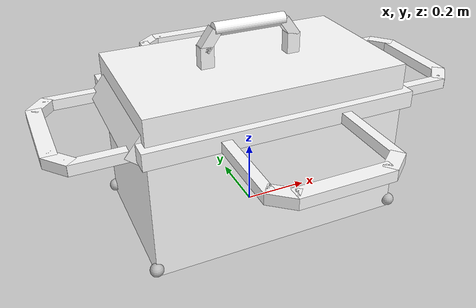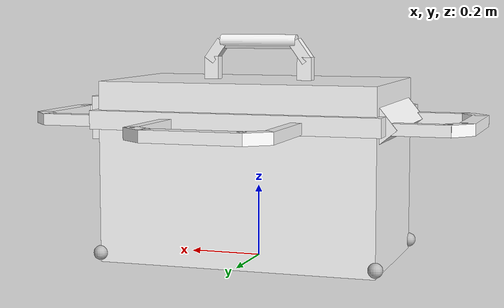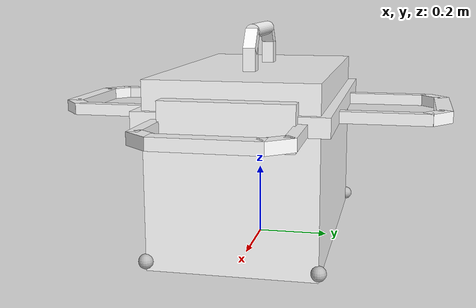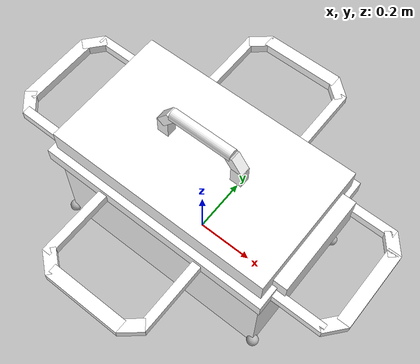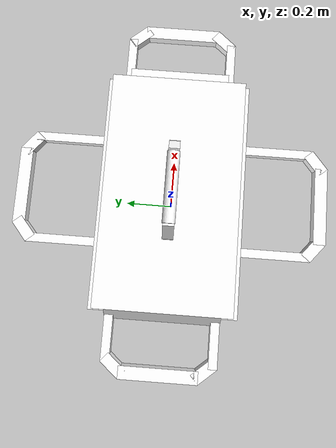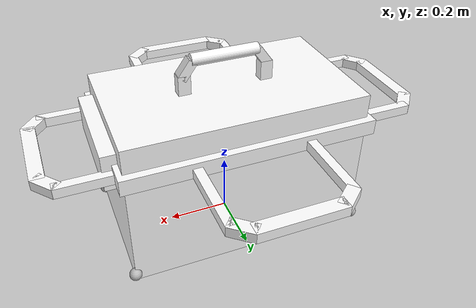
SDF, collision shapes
<?xml version='1.0' ?>
<sdf version="1.6">
    <model name="large_dry_box_handles">
        <static>false</static>
        <link name="suspension_front_left">
            <pose>.3861 .2245 0.025 0 0 0</pose>
            <inertial>
                <mass>0.5</mass>
                <inertia>
                    <ixx>8e-5</ixx>
                    <ixy>0.0</ixy>
                    <ixz>0.0</ixz>
                    <iyy>8e-5</iyy>
                    <iyz>0.0</iyz>
                    <izz>8e-5</izz>
                </inertia>
            </inertial>
        </link>
        <joint name="joint_suspension_front_left" type="prismatic">
            <parent>link</parent>
            <child>suspension_front_left</child>
            <axis>
                <xyz>0 0 1</xyz>
                <dynamics>
                    <damping>100</damping>
                    <spring_reference>-0.05</spring_reference>
                    <spring_stiffness>120</spring_stiffness>
                </dynamics>
                <limit>
                    <lower>-0.05</lower>
                    <upper>0.00</upper>
                </limit>
            </axis>
            <physics>
                <ode>
                    <implicit_spring_damper>true</implicit_spring_damper>
                </ode>
            </physics>
        </joint>
        <link name="caster_front_left">
            <pose>.3861 .2245 0.025 0 0 0</pose>
            <inertial>
                <mass>0.5</mass>
                <inertia>
                    <ixx>8e-5</ixx>
                    <ixy>0.0</ixy>
                    <ixz>0.0</ixz>
                    <iyy>8e-5</iyy>
                    <iyz>0.0</iyz>
                    <izz>8e-5</izz>
                </inertia>
            </inertial>
            <collision name="caster_front_left_col">
                <geometry>
                    <sphere>
                        <radius>0.02</radius>
                    </sphere>
                </geometry>
                <surface>
                    <contact>
                        <ode>
                            <kp>10000000.0</kp>
                            <kd>1.0</kd>
                        </ode>
                    </contact>
                </surface>
            </collision>
        </link>
        <joint name="joint_caster_front_left" type="ball">
            <parent>suspension_front_left</parent>
            <child>caster_front_left</child>
            <axis>
                <xyz>0 0 1</xyz>
            </axis>
        </joint>
        <link name="suspension_front_right">
            <pose>.3861 -.2245 0.025 0 0 0</pose>
            <inertial>
                <mass>0.5</mass>
                <inertia>
                    <ixx>8e-5</ixx>
                    <ixy>0.0</ixy>
                    <ixz>0.0</ixz>
                    <iyy>8e-5</iyy>
                    <iyz>0.0</iyz>
                    <izz>8e-5</izz>
                </inertia>
            </inertial>
        </link>
        <joint name="joint_suspension_front_right" type="prismatic">
            <parent>link</parent>
            <child>suspension_front_right</child>
            <axis>
                <xyz>0 0 1</xyz>
                <dynamics>
                    <damping>100</damping>
                    <spring_reference>-0.05</spring_reference>
                    <spring_stiffness>120</spring_stiffness>
                </dynamics>
                <limit>
                    <lower>-0.05</lower>
                    <upper>0.00</upper>
                </limit>
            </axis>
            <physics>
                <ode>
                    <implicit_spring_damper>true</implicit_spring_damper>
                </ode>
            </physics>
        </joint>
        <link name="caster_front_right">
            <pose>.3861 -.2245 0.025 0 0 0</pose>
            <inertial>
                <mass>0.5</mass>
                <inertia>
                    <ixx>8e-5</ixx>
                    <ixy>0.0</ixy>
                    <ixz>0.0</ixz>
                    <iyy>8e-5</iyy>
                    <iyz>0.0</iyz>
                    <izz>8e-5</izz>
                </inertia>
            </inertial>
            <collision name="caster_front_right_col">
                <geometry>
                    <sphere>
                        <radius>0.02</radius>
                    </sphere>
                </geometry>
                <surface>
                    <contact>
                        <ode>
                            <kp>10000000.0</kp>
                            <kd>1.0</kd>
                        </ode>
                    </contact>
                </surface>
            </collision>
        </link>
        <joint name="joint_caster_front_right" type="ball">
            <parent>suspension_front_right</parent>
            <child>caster_front_right</child>
            <axis>
                <xyz>0 0 1</xyz>
            </axis>
        </joint>
        <link name="suspension_back_left">
            <pose>-.3861 .2245 0.025 0 0 0</pose>
            <inertial>
                <mass>0.5</mass>
                <inertia>
                    <ixx>8e-5</ixx>
                    <ixy>0.0</ixy>
                    <ixz>0.0</ixz>
                    <iyy>8e-5</iyy>
                    <iyz>0.0</iyz>
                    <izz>8e-5</izz>
                </inertia>
            </inertial>
        </link>
        <joint name="joint_suspension_back_left" type="prismatic">
            <parent>link</parent>
            <child>suspension_back_left</child>
            <axis>
                <xyz>0 0 1</xyz>
                <dynamics>
                    <damping>100</damping>
                    <spring_reference>-0.05</spring_reference>
                    <spring_stiffness>120</spring_stiffness>
                </dynamics>
                <limit>
                    <lower>-0.05</lower>
                    <upper>0.00</upper>
                </limit>
            </axis>
            <physics>
                <ode>
                    <implicit_spring_damper>true</implicit_spring_damper>
                </ode>
            </physics>
        </joint>
        <link name="caster_back_left">
            <pose>-.3861 .2245 0.025 0 0 0</pose>
            <inertial>
                <mass>0.5</mass>
                <inertia>
                    <ixx>8e-5</ixx>
                    <ixy>0.0</ixy>
                    <ixz>0.0</ixz>
                    <iyy>8e-5</iyy>
                    <iyz>0.0</iyz>
                    <izz>8e-5</izz>
                </inertia>
            </inertial>
            <collision name="caster_back_left_col">
                <geometry>
                    <sphere>
                        <radius>0.02</radius>
                    </sphere>
                </geometry>
                <surface>
                    <contact>
                        <ode>
                            <kp>10000000.0</kp>
                            <kd>1.0</kd>
                        </ode>
                    </contact>
                </surface>
            </collision>
        </link>
        <joint name="joint_caster_back_left" type="ball">
            <parent>suspension_back_left</parent>
            <child>caster_back_left</child>
            <axis>
                <xyz>0 0 1</xyz>
            </axis>
        </joint>
        <link name="suspension_back_right">
            <pose>-.3861 -.2245 0.025 0 0 0</pose>
            <inertial>
                <mass>0.5</mass>
                <inertia>
                    <ixx>8e-5</ixx>
                    <ixy>0.0</ixy>
                    <ixz>0.0</ixz>
                    <iyy>8e-5</iyy>
                    <iyz>0.0</iyz>
                    <izz>8e-5</izz>
                </inertia>
            </inertial>
        </link>
        <joint name="joint_suspension_back_right" type="prismatic">
            <parent>link</parent>
            <child>suspension_back_right</child>
            <axis>
                <xyz>0 0 1</xyz>
                <dynamics>
                    <damping>100</damping>
                    <spring_reference>-0.05</spring_reference>
                    <spring_stiffness>120</spring_stiffness>
                </dynamics>
                <limit>
                    <lower>-0.05</lower>
                    <upper>0.00</upper>
                </limit>
            </axis>
            <physics>
                <ode>
                    <implicit_spring_damper>true</implicit_spring_damper>
                </ode>
            </physics>
        </joint>
        <link name="caster_back_right">
            <pose>-.3861 -.2245 0.025 0 0 0</pose>
            <inertial>
                <mass>0.5</mass>
                <inertia>
                    <ixx>8e-5</ixx>
                    <ixy>0.0</ixy>
                    <ixz>0.0</ixz>
                    <iyy>8e-5</iyy>
                    <iyz>0.0</iyz>
                    <izz>8e-5</izz>
                </inertia>
            </inertial>
            <collision name="caster_back_right_col">
                <geometry>
                    <sphere>
                        <radius>0.02</radius>
                    </sphere>
                </geometry>
                <surface>
                    <contact>
                        <ode>
                            <kp>10000000.0</kp>
                            <kd>1.0</kd>
                        </ode>
                    </contact>
                </surface>
            </collision>
        </link>
        <joint name="joint_caster_back_right" type="ball">
            <parent>suspension_back_right</parent>
            <child>caster_back_right</child>
            <axis>
                <xyz>0 0 1</xyz>
            </axis>
        </joint>
        <link name="link">
            <inertial>
                <pose>0 0 0.27 0 0 0</pose>
                <mass>2</mass>
                <inertia>
                    <ixx>0.1009</ixx>
                    <ixy>0.0</ixy>
                    <ixz>0.0</ixz>
                    <iyy>0.1777</iyy>
                    <iyz>0.0</iyz>
                    <izz>0.1813</izz>
                </inertia>
            </inertial>
            <visual name="visual">
                <geometry>
                    <mesh>
                        <uri>meshes/largedrybox.dae</uri>
                    </mesh>
                </geometry>
                <material>
                    <diffuse>1.0 1.0 1.0</diffuse>
                    <specular>1.0 1.0 1.0</specular>
                    <pbr>
                        <metal>
                            <albedo_map>materials/textures/LargeDryBox_Albedo.jpg</albedo_map>
                            <normal_map>materials/textures/LargeDryBox_Normal.jpg</normal_map>
                            <roughness_map>materials/textures/LargeDryBox_Roughness.jpg</roughness_map>
                        </metal>
                    </pbr>
                </material>
            </visual>
            <collision name="Cylinder002">
                <pose>0.0 0.0 0.603761 1.5708 0.0 1.5708</pose>
                <geometry>
                    <cylinder>
                        <length>0.217911</length>
                        <radius>0.0197214</radius>
                    </cylinder>
                </geometry>
            </collision>
            <collision name="Box069">
                <pose>0.135114 -0.000510667 0.514101 1.5708 0.0 1.5708</pose>
                <geometry>
                    <box>
                        <size>0.0345349 0.0943769 0.0403584</size>
                    </box>
                </geometry>
            </collision>
            <collision name="Box070">
                <pose>0.123455 -0.000510669 0.577033 0.944614 0.0 1.5708</pose>
                <geometry>
                    <box>
                        <size>0.0345349 0.0657995 0.0304827</size>
                    </box>
                </geometry>
            </collision>
            <collision name="Box071">
                <pose>0.0 0.0 0.249041 0.0 0.0 0.0</pose>
                <geometry>
                    <box>
                        <size>0.772257 0.449103 0.498081</size>
                    </box>
                </geometry>
            </collision>
            <collision name="Box072">
                <pose>-0.377964 0.0 0.398883 0.0 -0.889769 0.0</pose>
                <geometry>
                    <box>
                        <size>0.0910681 0.392965 0.0671908</size>
                    </box>
                </geometry>
            </collision>
            <collision name="Box005">
                <pose>0.0 0.0 0.394802 0.0 0.0 0.0</pose>
                <geometry>
                    <box>
                        <size>0.80589 0.500076 0.0506488</size>
                    </box>
                </geometry>
            </collision>
            <collision name="Box006">
                <pose>0.395201 0.0 0.394123 1.5708 0.0 1.5708</pose>
                <geometry>
                    <box>
                        <size>0.341681 0.118639 0.0743472</size>
                    </box>
                </geometry>
            </collision>
            <collision name="Box073">
                <pose>-0.123456 -0.000510669 0.577033 -0.944607 0.0 1.5708</pose>
                <geometry>
                    <box>
                        <size>0.0345349 0.0657995 0.0304827</size>
                    </box>
                </geometry>
            </collision>
            <collision name="Box074">
                <pose>-0.135114 -0.000510667 0.514101 1.5708 0.0 1.5708</pose>
                <geometry>
                    <box>
                        <size>0.0345349 0.0943769 0.0403584</size>
                    </box>
                </geometry>
            </collision>
            <collision name="Box075">
                <pose>-0.600994 0.0 0.386826 1.5708 0.0 -1.5708</pose>
                <geometry>
                    <box>
                        <size>0.266316 0.0316343 0.0433154</size>
                    </box>
                </geometry>
            </collision>
            <collision name="Box076">
                <pose>-0.581567 0.151505 0.386826 1.5708 0.0 -2.26893</pose>
                <geometry>
                    <box>
                        <size>0.0810202 0.0316343 0.039417</size>
                    </box>
                </geometry>
            </collision>
            <collision name="Box077">
                <pose>-0.470407 0.179853 0.386826 1.5708 0.0 3.14159</pose>
                <geometry>
                    <box>
                        <size>0.2 0.0316343 0.0301304</size>
                    </box>
                </geometry>
            </collision>
            <collision name="Box078">
                <pose>-0.470407 -0.179853 0.386826 1.5708 0.0 -6.51683e-07</pose>
                <geometry>
                    <box>
                        <size>0.2 0.0316343 0.0301304</size>
                    </box>
                </geometry>
            </collision>
            <collision name="Box079">
                <pose>-0.581567 -0.151505 0.386826 1.5708 0.0 -0.872665</pose>
                <geometry>
                    <box>
                        <size>0.0810202 0.0316343 0.039417</size>
                    </box>
                </geometry>
            </collision>
            <collision name="Box082">
                <pose>0.0 0.521852 0.386826 1.5708 0.0 3.14159</pose>
                <geometry>
                    <box>
                        <size>0.266316 0.0316343 0.0433154</size>
                    </box>
                </geometry>
            </collision>
            <collision name="Box080">
                <pose>0.151505 0.502425 0.386826 1.5708 0.0 2.44346</pose>
                <geometry>
                    <box>
                        <size>0.0810202 0.0316343 0.039417</size>
                    </box>
                </geometry>
            </collision>
            <collision name="Box081">
                <pose>-0.151505 0.502425 0.386826 1.5708 1.49012e-07 -2.44346</pose>
                <geometry>
                    <box>
                        <size>0.0810202 0.0316343 0.039417</size>
                    </box>
                </geometry>
            </collision>
            <collision name="Box083">
                <pose>0.179853 0.226463 0.386826 1.5708 0.0 1.5708</pose>
                <geometry>
                    <box>
                        <size>0.530265 0.0316343 0.0301304</size>
                    </box>
                </geometry>
            </collision>
            <collision name="Box084">
                <pose>-0.179853 0.226464 0.386826 1.5708 -3.57628e-07 -1.5708</pose>
                <geometry>
                    <box>
                        <size>0.530265 0.0316343 0.0301304</size>
                    </box>
                </geometry>
            </collision>
            <collision name="Box085">
                <pose>0.600994 0.0 0.386826 1.5708 0.0 1.5708</pose>
                <geometry>
                    <box>
                        <size>0.266316 0.0316343 0.0433154</size>
                    </box>
                </geometry>
            </collision>
            <collision name="Box086">
                <pose>0.581568 -0.151505 0.386826 1.5708 0.0 0.872665</pose>
                <geometry>
                    <box>
                        <size>0.0810202 0.0316343 0.039417</size>
                    </box>
                </geometry>
            </collision>
            <collision name="Box087">
                <pose>0.470407 -0.179853 0.386826 1.5708 0.0 -6.51683e-07</pose>
                <geometry>
                    <box>
                        <size>0.2 0.0316343 0.0301304</size>
                    </box>
                </geometry>
            </collision>
            <collision name="Box088">
                <pose>0.470407 0.179853 0.386826 1.5708 0.0 3.14159</pose>
                <geometry>
                    <box>
                        <size>0.2 0.0316343 0.0301304</size>
                    </box>
                </geometry>
            </collision>
            <collision name="Box089">
                <pose>0.581568 0.151505 0.386826 1.5708 0.0 2.26893</pose>
                <geometry>
                    <box>
                        <size>0.0810202 0.0316343 0.039417</size>
                    </box>
                </geometry>
            </collision>
            <collision name="Box092">
                <pose>0.0 -0.521852 0.386826 1.5708 0.0 -1.19209e-07</pose>
                <geometry>
                    <box>
                        <size>0.266316 0.0316343 0.0433154</size>
                    </box>
                </geometry>
            </collision>
            <collision name="Box090">
                <pose>-0.151505 -0.502425 0.386826 1.5708 0.0 -0.698132</pose>
                <geometry>
                    <box>
                        <size>0.0810202 0.0316343 0.039417</size>
                    </box>
                </geometry>
            </collision>
            <collision name="Box091">
                <pose>0.151505 -0.502425 0.386826 1.5708 1.49012e-07 0.698131</pose>
                <geometry>
                    <box>
                        <size>0.0810202 0.0316343 0.039417</size>
                    </box>
                </geometry>
            </collision>
            <collision name="Box093">
                <pose>0.179853 -0.226464 0.386826 1.5708 -3.57628e-07 1.5708</pose>
                <geometry>
                    <box>
                        <size>0.530265 0.0316343 0.0301304</size>
                    </box>
                </geometry>
            </collision>
            <collision name="Box094">
                <pose>-0.179853 -0.226464 0.386826 1.5708 1.49012e-07 -1.5708</pose>
                <geometry>
                    <box>
                        <size>0.530265 0.0316343 0.0301304</size>
                    </box>
                </geometry>
            </collision>
        </link>
    </model>
</sdf>
